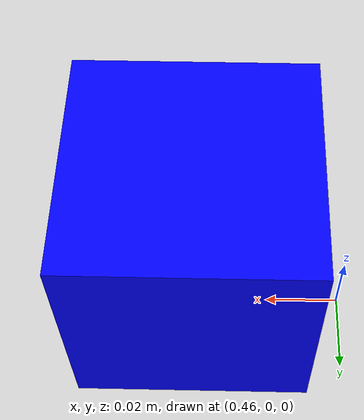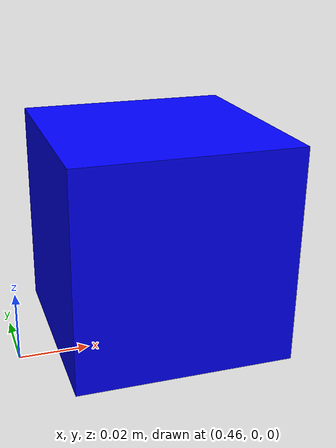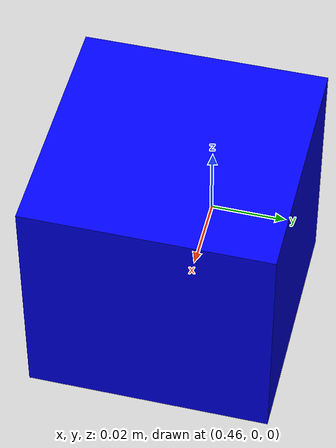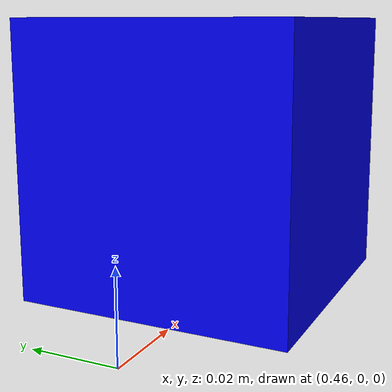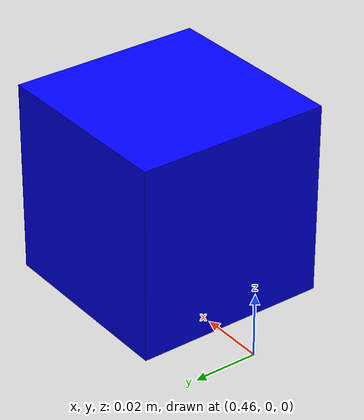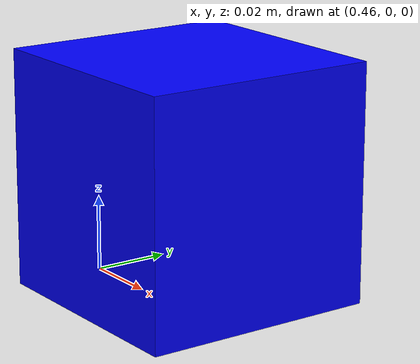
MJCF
<mujoco model="push_box">
  <compiler angle="radian" autolimits="true"/>

  <asset>
    <material name="box_mat" rgba="0 0 1 1" specular="0.4" shininess="0.2"/>
  </asset>

  <worldbody>
    <body name="box" pos="0.5 0 0.035">
      <freejoint name="box_joint"/>
      <geom name="box_geom" type="box" size="0.03 0.03 0.03"
            mass="0.05" material="box_mat" condim="6"
            friction="0.8 0.005 0.001"
            solimp="0.95 0.99 0.001" solref="0.02 1.0"/>
      <site name="box_center" pos="0 0 0" size="0.003" rgba="1 0 0 1"/>
    </body>
  </worldbody>
</mujoco>
